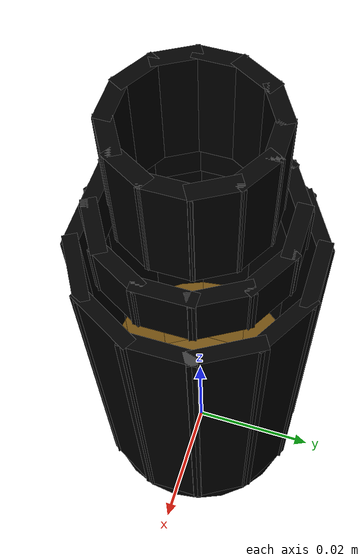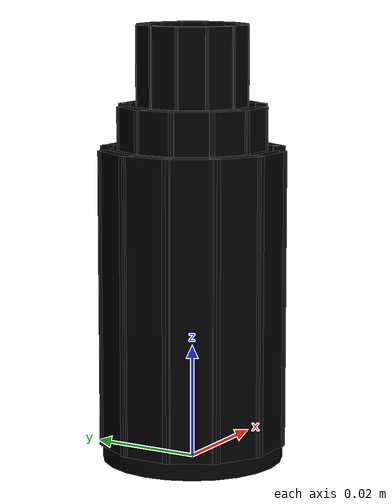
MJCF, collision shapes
<!-- Generated by tools/build_labelled_bottles.py. Linalool (liquid),
     30 ml, marker 7, barcode 2004771734124.
     Origin bottom-centre, +Z up, the label's front facing -Y. -->
<mujoco model="SMP-0008_open">
  <!-- Generated by scripts/generate_open_vessels.py; do not edit by hand. -->
  <asset>
    <mesh name="flask_30ml_glass" file="../labelled_bottles/meshes/flask_30ml_glass.obj" inertia="exact"/>
    <mesh name="flask_30ml_cap" file="../labelled_bottles/meshes/flask_30ml_cap.obj" inertia="exact"/>
    <mesh name="flask_30ml_label" file="../labelled_bottles/meshes/flask_30ml_label.obj" inertia="shell"/>
    <mesh name="flask_30ml_label_back" file="../labelled_bottles/meshes/flask_30ml_label_back.obj" inertia="shell"/>
    <texture name="label" type="2d" file="../labelled_bottles/textures/SMP-0008.png"/>
    <material name="label" texture="label" specular="0.05" shininess="0.1"/>
  </asset>
  <worldbody>
    <body name="SMP-0008">
      <inertial pos="-0.00001 0.00000 0.03445" mass="0.03441"
                diaginertia="2.110e-05 2.110e-05 6.234e-06"/>
      <geom name="glass" type="mesh" mesh="flask_30ml_glass" rgba="0.620 0.280 0.050 0.500" contype="0" conaffinity="0" mass="0"/>
      <geom name="label" type="mesh" mesh="flask_30ml_label" material="label" contype="0" conaffinity="0" mass="0"/>
      <geom name="label_back" type="mesh" mesh="flask_30ml_label_back" rgba="0.950 0.950 0.930 1" contype="0" conaffinity="0" mass="0"/>
      <geom name="body_00" type="box" pos="0.01507 0.00000 0.02922"
            size="0.00100 0.00493 0.02622" euler="0 0 0.000"
            rgba="0 0 0 0" mass="0" group="3"/>
      <geom name="body_01" type="box" pos="0.01306 0.00754 0.02922"
            size="0.00100 0.00493 0.02622" euler="0 0 30.000"
            rgba="0 0 0 0" mass="0" group="3"/>
      <geom name="body_02" type="box" pos="0.00754 0.01306 0.02922"
            size="0.00100 0.00493 0.02622" euler="0 0 60.000"
            rgba="0 0 0 0" mass="0" group="3"/>
      <geom name="body_03" type="box" pos="0.00000 0.01507 0.02922"
            size="0.00100 0.00493 0.02622" euler="0 0 90.000"
            rgba="0 0 0 0" mass="0" group="3"/>
      <geom name="body_04" type="box" pos="-0.00754 0.01306 0.02922"
            size="0.00100 0.00493 0.02622" euler="0 0 120.000"
            rgba="0 0 0 0" mass="0" group="3"/>
      <geom name="body_05" type="box" pos="-0.01306 0.00754 0.02922"
            size="0.00100 0.00493 0.02622" euler="0 0 150.000"
            rgba="0 0 0 0" mass="0" group="3"/>
      <geom name="body_06" type="box" pos="-0.01507 0.00000 0.02922"
            size="0.00100 0.00493 0.02622" euler="0 0 180.000"
            rgba="0 0 0 0" mass="0" group="3"/>
      <geom name="body_07" type="box" pos="-0.01306 -0.00754 0.02922"
            size="0.00100 0.00493 0.02622" euler="0 0 210.000"
            rgba="0 0 0 0" mass="0" group="3"/>
      <geom name="body_08" type="box" pos="-0.00754 -0.01306 0.02922"
            size="0.00100 0.00493 0.02622" euler="0 0 240.000"
            rgba="0 0 0 0" mass="0" group="3"/>
      <geom name="body_09" type="box" pos="-0.00000 -0.01507 0.02922"
            size="0.00100 0.00493 0.02622" euler="0 0 270.000"
            rgba="0 0 0 0" mass="0" group="3"/>
      <geom name="body_10" type="box" pos="0.00754 -0.01306 0.02922"
            size="0.00100 0.00493 0.02622" euler="0 0 300.000"
            rgba="0 0 0 0" mass="0" group="3"/>
      <geom name="body_11" type="box" pos="0.01306 -0.00754 0.02922"
            size="0.00100 0.00493 0.02622" euler="0 0 330.000"
            rgba="0 0 0 0" mass="0" group="3"/>
      <geom name="shoulder_00" type="box" pos="0.01189 0.00000 0.05921"
            size="0.00100 0.00389 0.00377" euler="0 0 0.000"
            rgba="0 0 0 0" mass="0" group="3"/>
      <geom name="shoulder_01" type="box" pos="0.01030 0.00594 0.05921"
            size="0.00100 0.00389 0.00377" euler="0 0 30.000"
            rgba="0 0 0 0" mass="0" group="3"/>
      <geom name="shoulder_02" type="box" pos="0.00594 0.01030 0.05921"
            size="0.00100 0.00389 0.00377" euler="0 0 60.000"
            rgba="0 0 0 0" mass="0" group="3"/>
      <geom name="shoulder_03" type="box" pos="0.00000 0.01189 0.05921"
            size="0.00100 0.00389 0.00377" euler="0 0 90.000"
            rgba="0 0 0 0" mass="0" group="3"/>
      <geom name="shoulder_04" type="box" pos="-0.00594 0.01030 0.05921"
            size="0.00100 0.00389 0.00377" euler="0 0 120.000"
            rgba="0 0 0 0" mass="0" group="3"/>
      <geom name="shoulder_05" type="box" pos="-0.01030 0.00594 0.05921"
            size="0.00100 0.00389 0.00377" euler="0 0 150.000"
            rgba="0 0 0 0" mass="0" group="3"/>
      <geom name="shoulder_06" type="box" pos="-0.01189 0.00000 0.05921"
            size="0.00100 0.00389 0.00377" euler="0 0 180.000"
            rgba="0 0 0 0" mass="0" group="3"/>
      <geom name="shoulder_07" type="box" pos="-0.01030 -0.00594 0.05921"
            size="0.00100 0.00389 0.00377" euler="0 0 210.000"
            rgba="0 0 0 0" mass="0" group="3"/>
      <geom name="shoulder_08" type="box" pos="-0.00594 -0.01030 0.05921"
            size="0.00100 0.00389 0.00377" euler="0 0 240.000"
            rgba="0 0 0 0" mass="0" group="3"/>
      <geom name="shoulder_09" type="box" pos="-0.00000 -0.01189 0.05921"
            size="0.00100 0.00389 0.00377" euler="0 0 270.000"
            rgba="0 0 0 0" mass="0" group="3"/>
      <geom name="shoulder_10" type="box" pos="0.00594 -0.01030 0.05921"
            size="0.00100 0.00389 0.00377" euler="0 0 300.000"
            rgba="0 0 0 0" mass="0" group="3"/>
      <geom name="shoulder_11" type="box" pos="0.01030 -0.00594 0.05921"
            size="0.00100 0.00389 0.00377" euler="0 0 330.000"
            rgba="0 0 0 0" mass="0" group="3"/>
      <geom name="neck_00" type="box" pos="0.00870 0.00000 0.06999"
            size="0.00100 0.00285 0.00701" euler="0 0 0.000"
            rgba="0 0 0 0" mass="0" group="3"/>
      <geom name="neck_01" type="box" pos="0.00753 0.00435 0.06999"
            size="0.00100 0.00285 0.00701" euler="0 0 30.000"
            rgba="0 0 0 0" mass="0" group="3"/>
      <geom name="neck_02" type="box" pos="0.00435 0.00753 0.06999"
            size="0.00100 0.00285 0.00701" euler="0 0 60.000"
            rgba="0 0 0 0" mass="0" group="3"/>
      <geom name="neck_03" type="box" pos="0.00000 0.00870 0.06999"
            size="0.00100 0.00285 0.00701" euler="0 0 90.000"
            rgba="0 0 0 0" mass="0" group="3"/>
      <geom name="neck_04" type="box" pos="-0.00435 0.00753 0.06999"
            size="0.00100 0.00285 0.00701" euler="0 0 120.000"
            rgba="0 0 0 0" mass="0" group="3"/>
      <geom name="neck_05" type="box" pos="-0.00753 0.00435 0.06999"
            size="0.00100 0.00285 0.00701" euler="0 0 150.000"
            rgba="0 0 0 0" mass="0" group="3"/>
      <geom name="neck_06" type="box" pos="-0.00870 0.00000 0.06999"
            size="0.00100 0.00285 0.00701" euler="0 0 180.000"
            rgba="0 0 0 0" mass="0" group="3"/>
      <geom name="neck_07" type="box" pos="-0.00753 -0.00435 0.06999"
            size="0.00100 0.00285 0.00701" euler="0 0 210.000"
            rgba="0 0 0 0" mass="0" group="3"/>
      <geom name="neck_08" type="box" pos="-0.00435 -0.00753 0.06999"
            size="0.00100 0.00285 0.00701" euler="0 0 240.000"
            rgba="0 0 0 0" mass="0" group="3"/>
      <geom name="neck_09" type="box" pos="-0.00000 -0.00870 0.06999"
            size="0.00100 0.00285 0.00701" euler="0 0 270.000"
            rgba="0 0 0 0" mass="0" group="3"/>
      <geom name="neck_10" type="box" pos="0.00435 -0.00753 0.06999"
            size="0.00100 0.00285 0.00701" euler="0 0 300.000"
            rgba="0 0 0 0" mass="0" group="3"/>
      <geom name="neck_11" type="box" pos="0.00753 -0.00435 0.06999"
            size="0.00100 0.00285 0.00701" euler="0 0 330.000"
            rgba="0 0 0 0" mass="0" group="3"/>
      <geom name="base" type="cylinder" pos="0 0 0.00150"
            size="0.01607 0.00150"
            rgba="0 0 0 0" mass="0" group="3"/>
      <geom name="liquid" type="cylinder" pos="0 0 0.01324"
            size="0.01407 0.01024" rgba="0.86 0.62 0.18 0.55"
            contype="0" conaffinity="0" mass="0"/>
      <site name="mouth" pos="0 0 0.07700" size="0.00690 0.001" type="cylinder"
            rgba="0.2 0.7 0.9 0.25" group="4"/>
    </body>
  </worldbody>
</mujoco>
